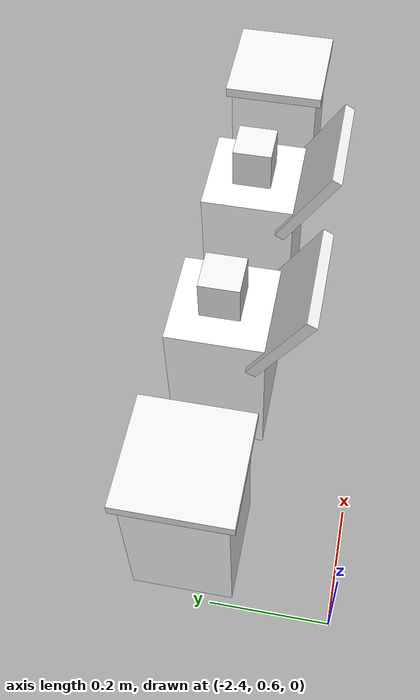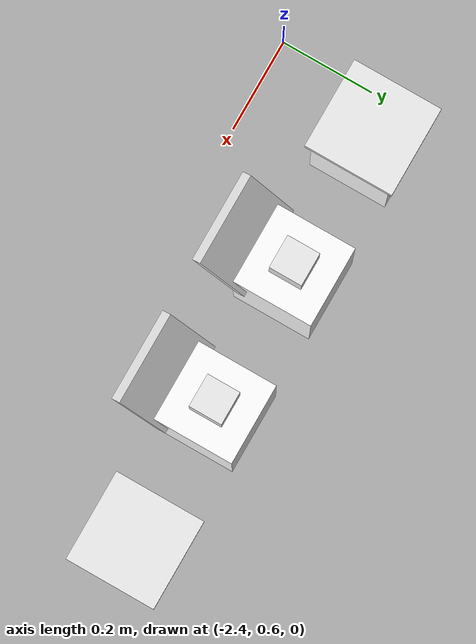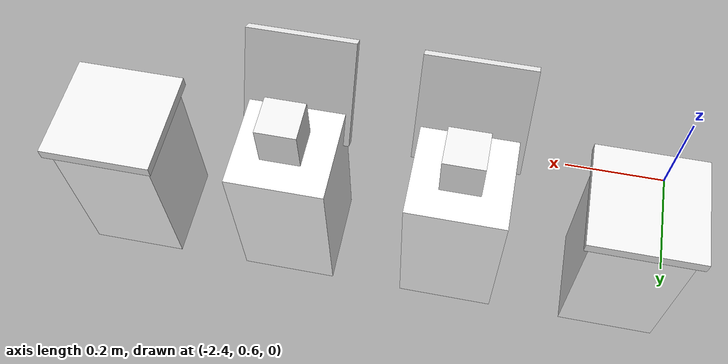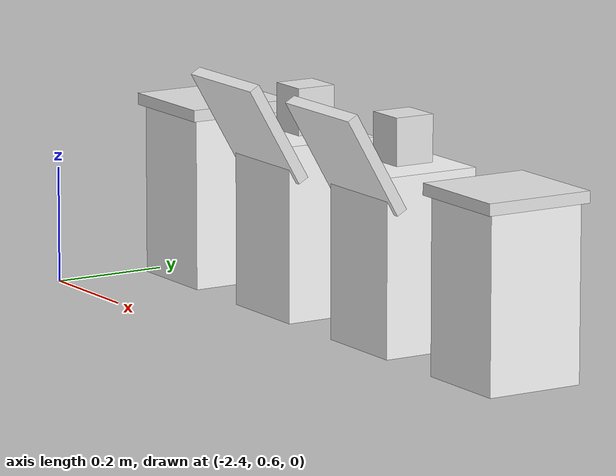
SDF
<sdf version="1.6">
 <world name="sq_community">
  <model name="sq_bins">
   <static>1</static>
   <link name="bin_recycle_body">
    <collision name="bin_recycle_body_c">
     <pose>-2.3 0.85 0.15 0 0 0</pose>
     <geometry><box><size>0.17 0.17 0.3</size></box></geometry>
    </collision>
    <visual name="bin_recycle_body_v">
     <pose>-2.3 0.85 0.15 0 0 0</pose>
     <geometry><box><size>0.17 0.17 0.3</size></box></geometry>
     <material>
      <script>
       <uri>model://sq_textures/materials/scripts</uri>
       <uri>model://sq_textures/materials/textures</uri>
       <name>SQ_bin_recycle</name>
      </script>
      <ambient>1 1 1 1</ambient>
      <diffuse>1 1 1 1</diffuse>
      <specular>0.05 0.05 0.05 1</specular>
     </material>
    </visual>
   </link>
   <link name="bin_recycle_lid">
    <visual name="bin_recycle_lid_v">
     <pose>-2.3 0.85 0.305 0 0 0</pose>
     <geometry><box><size>0.19 0.19 0.02</size></box></geometry>
     <material>
      <script><uri>file://media/materials/scripts/gazebo.material</uri><name>Gazebo/White</name></script>
      <ambient>0.154 0.1595 0.1705 1</ambient>
      <diffuse>0.28 0.29 0.31 1</diffuse>
      <specular>0.1 0.1 0.1 1</specular>
      <emissive>0 0 0 1</emissive>
     </material>
    </visual>
   </link>
   <link name="bin_hazard_body">
    <collision name="bin_hazard_body_c">
     <pose>-2 0.85 0.15 0 0 0</pose>
     <geometry><box><size>0.17 0.17 0.3</size></box></geometry>
    </collision>
    <visual name="bin_hazard_body_v">
     <pose>-2 0.85 0.15 0 0 0</pose>
     <geometry><box><size>0.17 0.17 0.3</size></box></geometry>
     <material>
      <script>
       <uri>model://sq_textures/materials/scripts</uri>
       <uri>model://sq_textures/materials/textures</uri>
       <name>SQ_bin_hazard</name>
      </script>
      <ambient>1 1 1 1</ambient>
      <diffuse>1 1 1 1</diffuse>
      <specular>0.05 0.05 0.05 1</specular>
     </material>
    </visual>
   </link>
   <link name="bin_hazard_lid">
    <visual name="bin_hazard_lid_v">
     <pose>-2 0.74 0.325 -1.05 0 0</pose>
     <geometry><box><size>0.19 0.19 0.02</size></box></geometry>
     <material>
      <script><uri>file://media/materials/scripts/gazebo.material</uri><name>Gazebo/White</name></script>
      <ambient>0.154 0.1595 0.1705 1</ambient>
      <diffuse>0.28 0.29 0.31 1</diffuse>
      <specular>0.1 0.1 0.1 1</specular>
      <emissive>0 0 0 1</emissive>
     </material>
    </visual>
   </link>
   <link name="bin_hazard_item">
    <collision name="bin_hazard_item_c">
     <pose>-2 0.85 0.345 0 0 0</pose>
     <geometry><box><size>0.07 0.07 0.08</size></box></geometry>
    </collision>
    <visual name="bin_hazard_item_v">
     <pose>-2 0.85 0.345 0 0 0</pose>
     <geometry><box><size>0.07 0.07 0.08</size></box></geometry>
     <material>
      <script><uri>file://media/materials/scripts/gazebo.material</uri><name>Gazebo/White</name></script>
      <ambient>0.4675 0.4125 0.0825 1</ambient>
      <diffuse>0.85 0.75 0.15 1</diffuse>
      <specular>0.1 0.1 0.1 1</specular>
      <emissive>0 0 0 1</emissive>
     </material>
    </visual>
   </link>
   <link name="bin_kitchen_body">
    <collision name="bin_kitchen_body_c">
     <pose>-1.7 0.85 0.15 0 0 0</pose>
     <geometry><box><size>0.17 0.17 0.3</size></box></geometry>
    </collision>
    <visual name="bin_kitchen_body_v">
     <pose>-1.7 0.85 0.15 0 0 0</pose>
     <geometry><box><size>0.17 0.17 0.3</size></box></geometry>
     <material>
      <script>
       <uri>model://sq_textures/materials/scripts</uri>
       <uri>model://sq_textures/materials/textures</uri>
       <name>SQ_bin_kitchen</name>
      </script>
      <ambient>1 1 1 1</ambient>
      <diffuse>1 1 1 1</diffuse>
      <specular>0.05 0.05 0.05 1</specular>
     </material>
    </visual>
   </link>
   <link name="bin_kitchen_lid">
    <visual name="bin_kitchen_lid_v">
     <pose>-1.7 0.74 0.325 -1.05 0 0</pose>
     <geometry><box><size>0.19 0.19 0.02</size></box></geometry>
     <material>
      <script><uri>file://media/materials/scripts/gazebo.material</uri><name>Gazebo/White</name></script>
      <ambient>0.154 0.1595 0.1705 1</ambient>
      <diffuse>0.28 0.29 0.31 1</diffuse>
      <specular>0.1 0.1 0.1 1</specular>
      <emissive>0 0 0 1</emissive>
     </material>
    </visual>
   </link>
   <link name="bin_kitchen_item">
    <collision name="bin_kitchen_item_c">
     <pose>-1.7 0.85 0.345 0 0 0</pose>
     <geometry><box><size>0.07 0.07 0.08</size></box></geometry>
    </collision>
    <visual name="bin_kitchen_item_v">
     <pose>-1.7 0.85 0.345 0 0 0</pose>
     <geometry><box><size>0.07 0.07 0.08</size></box></geometry>
     <material>
      <script><uri>file://media/materials/scripts/gazebo.material</uri><name>Gazebo/White</name></script>
      <ambient>0.165 0.385 0.4675 1</ambient>
      <diffuse>0.3 0.7 0.85 1</diffuse>
      <specular>0.1 0.1 0.1 1</specular>
      <emissive>0 0 0 1</emissive>
     </material>
    </visual>
   </link>
   <link name="bin_other_body">
    <collision name="bin_other_body_c">
     <pose>-1.4 0.85 0.15 0 0 0</pose>
     <geometry><box><size>0.17 0.17 0.3</size></box></geometry>
    </collision>
    <visual name="bin_other_body_v">
     <pose>-1.4 0.85 0.15 0 0 0</pose>
     <geometry><box><size>0.17 0.17 0.3</size></box></geometry>
     <material>
      <script>
       <uri>model://sq_textures/materials/scripts</uri>
       <uri>model://sq_textures/materials/textures</uri>
       <name>SQ_bin_other</name>
      </script>
      <ambient>1 1 1 1</ambient>
      <diffuse>1 1 1 1</diffuse>
      <specular>0.05 0.05 0.05 1</specular>
     </material>
    </visual>
   </link>
   <link name="bin_other_lid">
    <visual name="bin_other_lid_v">
     <pose>-1.4 0.85 0.305 0 0 0</pose>
     <geometry><box><size>0.19 0.19 0.02</size></box></geometry>
     <material>
      <script><uri>file://media/materials/scripts/gazebo.material</uri><name>Gazebo/White</name></script>
      <ambient>0.154 0.1595 0.1705 1</ambient>
      <diffuse>0.28 0.29 0.31 1</diffuse>
      <specular>0.1 0.1 0.1 1</specular>
      <emissive>0 0 0 1</emissive>
     </material>
    </visual>
   </link>
  </model>
 </world>
</sdf>
